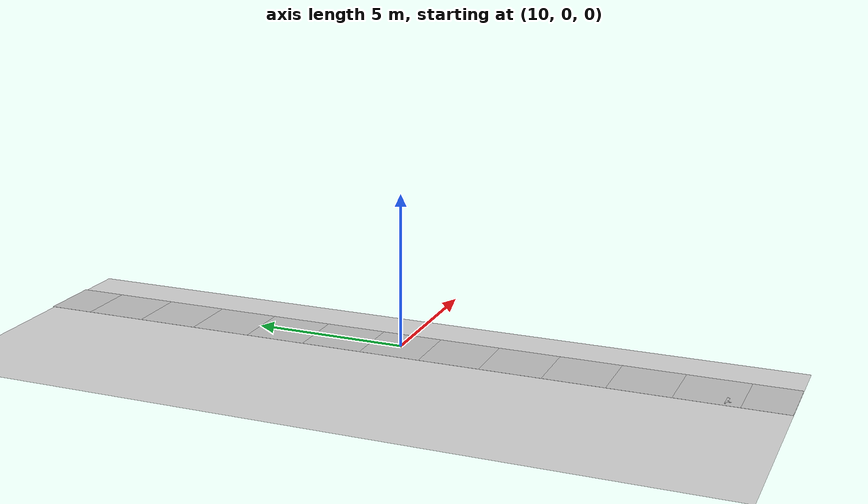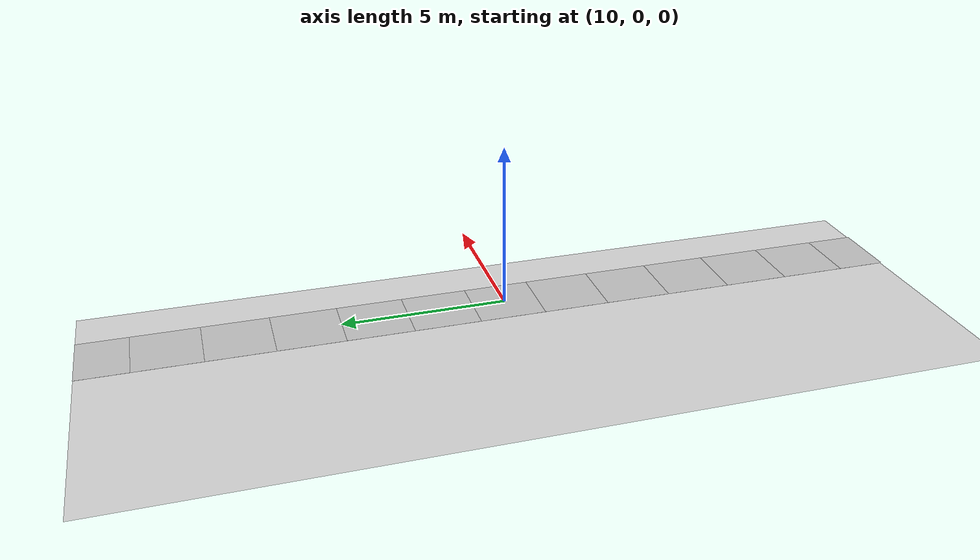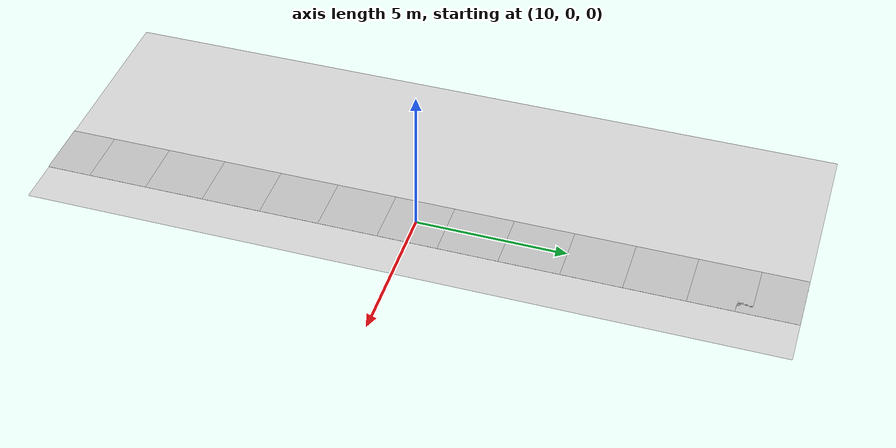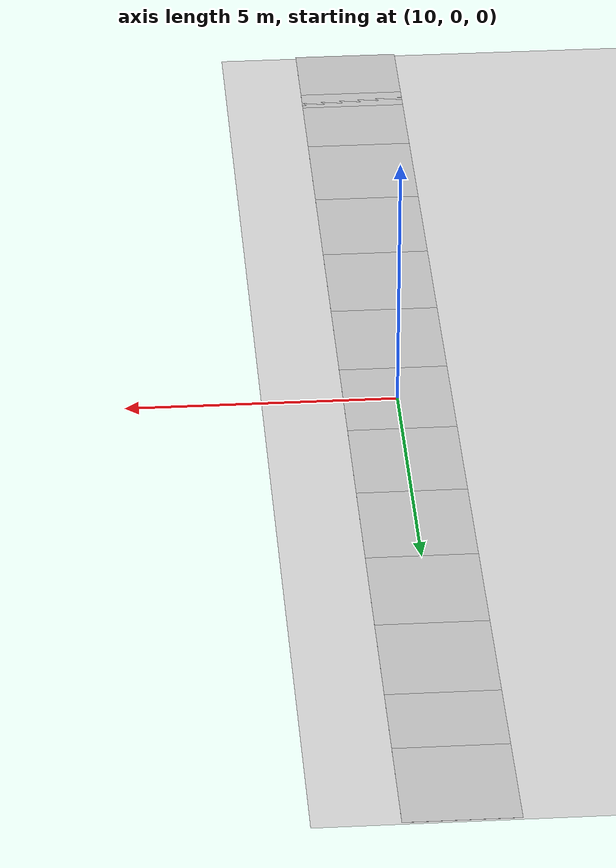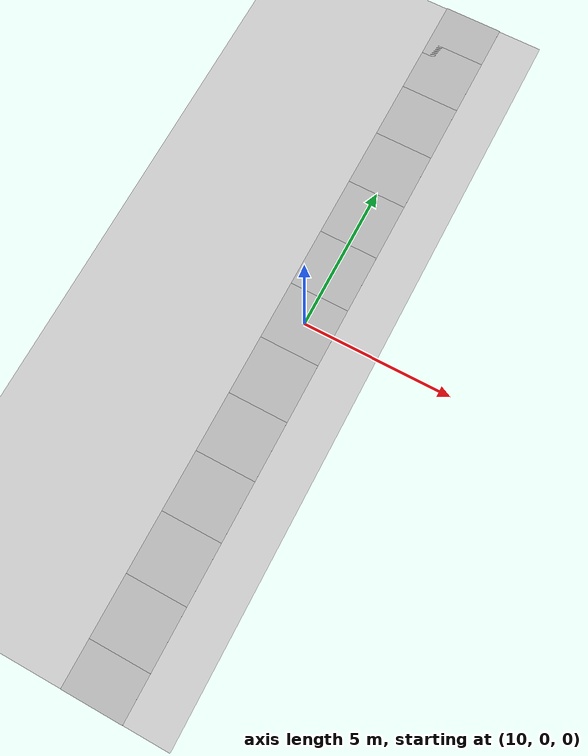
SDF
<sdf version="1.6">
 <world name="default">
  <light name="sun" type="directional">
   <pose>0 0 10 0 -0 0</pose>
   <diffuse>0.8 0.8 0.8 1</diffuse>
   <specular>0.2 0.2 0.2 1</specular>
   <attenuation>
    <range>1000</range>
    <constant>0.9</constant>
    <linear>0.01</linear>
    <quadratic>0.001</quadratic>
   </attenuation>
   <direction>-0.5 0.1 -0.9</direction>
  </light>
  <gravity>0 0 -9.8</gravity>
  <magnetic_field>6e-06 2.3e-05 -4.2e-05</magnetic_field>
  <atmosphere type="adiabatic"/>
  <physics name="default_physics" default="0" type="ode">
   <max_step_size>0.001</max_step_size>
   <real_time_factor>1</real_time_factor>
   <real_time_update_rate>1000</real_time_update_rate>
  </physics>
  <scene><ambient>0.4 0.4 0.4 1</ambient><background>0.7 0.7 0.7 1</background><shadows>1</shadows></scene>
  <spherical_coordinates>
   <surface_model>EARTH_WGS84</surface_model>
   <latitude_deg>0</latitude_deg>
   <longitude_deg>0</longitude_deg>
   <elevation>0</elevation>
   <heading_deg>0</heading_deg>
  </spherical_coordinates>
  <model name="my_ground_plane">
   <static>1</static>
   <link name="link">
    <collision name="collision">
     <geometry><plane><normal>0 0 1</normal><size>25 25</size></plane></geometry>
     <surface><friction><ode><mu>100</mu><mu2>50</mu2></ode></friction></surface>
    </collision>
    <visual name="visual">
     <cast_shadows>0</cast_shadows>
     <geometry><plane><normal>0 0 1</normal><size>25 25</size></plane></geometry>
     <material>
      <script>
       <uri>model://my_ground_plane/materials/scripts/my_ground_plane.material</uri>
       <uri>model://my_ground_plane/materials/textures/MyImage.jpg</uri>
       <name>MyGroundPlane/Image</name>
      </script>
     </material>
    </visual>
   </link>
  </model>
  <model name="my_trail">
   <static>1</static>
   <link name="link">
    <collision name="collision">
     <geometry><plane><normal>0 0 1</normal><size>2 2</size></plane></geometry>
     <surface><friction><ode><mu>100</mu><mu2>50</mu2></ode></friction></surface>
    </collision>
    <visual name="visual">
     <cast_shadows>0</cast_shadows>
     <geometry><plane><normal>0 0 1</normal><size>2 2</size></plane></geometry>
     <material>
      <script>
       <uri>model://my_trail/materials/scripts/my_trail.material</uri>
       <uri>model://my_trail/materials/textures/dirt.jpg</uri>
       <name>MyTrail/Image</name>
      </script>
     </material>
    </visual>
   </link>
   <pose>10 0 0.01 0 -0 0</pose>
  </model>
  <model name="my_trail_0">
   <static>1</static>
   <link name="link">
    <collision name="collision">
     <geometry><plane><normal>0 0 1</normal><size>2 2</size></plane></geometry>
     <surface><friction><ode><mu>100</mu><mu2>50</mu2></ode></friction></surface>
    </collision>
    <visual name="visual">
     <cast_shadows>0</cast_shadows>
     <geometry><plane><normal>0 0 1</normal><size>2 2</size></plane></geometry>
     <material>
      <script>
       <uri>model://my_trail/materials/scripts/my_trail.material</uri>
       <uri>model://my_trail/materials/textures/dirt.jpg</uri>
       <name>MyTrail/Image</name>
      </script>
     </material>
    </visual>
   </link>
   <pose>10 -2 0.01 0 -0 0</pose>
  </model>
  <model name="my_trail_1">
   <static>1</static>
   <link name="link">
    <collision name="collision">
     <geometry><plane><normal>0 0 1</normal><size>2 2</size></plane></geometry>
     <surface><friction><ode><mu>100</mu><mu2>50</mu2></ode></friction></surface>
    </collision>
    <visual name="visual">
     <cast_shadows>0</cast_shadows>
     <geometry><plane><normal>0 0 1</normal><size>2 2</size></plane></geometry>
     <material>
      <script>
       <uri>model://my_trail/materials/scripts/my_trail.material</uri>
       <uri>model://my_trail/materials/textures/dirt.jpg</uri>
       <name>MyTrail/Image</name>
      </script>
     </material>
    </visual>
   </link>
   <pose>10 -4 0.01 0 -0 0</pose>
  </model>
  <model name="my_trail_2">
   <static>1</static>
   <link name="link">
    <collision name="collision">
     <geometry><plane><normal>0 0 1</normal><size>2 2</size></plane></geometry>
     <surface><friction><ode><mu>100</mu><mu2>50</mu2></ode></friction></surface>
    </collision>
    <visual name="visual">
     <cast_shadows>0</cast_shadows>
     <geometry><plane><normal>0 0 1</normal><size>2 2</size></plane></geometry>
     <material>
      <script>
       <uri>model://my_trail/materials/scripts/my_trail.material</uri>
       <uri>model://my_trail/materials/textures/dirt.jpg</uri>
       <name>MyTrail/Image</name>
      </script>
     </material>
    </visual>
   </link>
   <pose>10 -10 0.01 0 -0 0</pose>
  </model>
  <model name="my_trail_3">
   <static>1</static>
   <link name="link">
    <collision name="collision">
     <geometry><plane><normal>0 0 1</normal><size>2 2</size></plane></geometry>
     <surface><friction><ode><mu>100</mu><mu2>50</mu2></ode></friction></surface>
    </collision>
    <visual name="visual">
     <cast_shadows>0</cast_shadows>
     <geometry><plane><normal>0 0 1</normal><size>2 2</size></plane></geometry>
     <material>
      <script>
       <uri>model://my_trail/materials/scripts/my_trail.material</uri>
       <uri>model://my_trail/materials/textures/dirt.jpg</uri>
       <name>MyTrail/Image</name>
      </script>
     </material>
    </visual>
   </link>
   <pose>10 -11.5 0.01 0 -0 0</pose>
  </model>
  <model name="my_trail_4">
   <static>1</static>
   <link name="link">
    <collision name="collision">
     <geometry><plane><normal>0 0 1</normal><size>2 2</size></plane></geometry>
     <surface><friction><ode><mu>100</mu><mu2>50</mu2></ode></friction></surface>
    </collision>
    <visual name="visual">
     <cast_shadows>0</cast_shadows>
     <geometry><plane><normal>0 0 1</normal><size>2 2</size></plane></geometry>
     <material>
      <script>
       <uri>model://my_trail/materials/scripts/my_trail.material</uri>
       <uri>model://my_trail/materials/textures/dirt.jpg</uri>
       <name>MyTrail/Image</name>
      </script>
     </material>
    </visual>
   </link>
   <pose>10 -8 0.01 0 -0 0</pose>
  </model>
  <model name="my_trail_5">
   <static>1</static>
   <link name="link">
    <collision name="collision">
     <geometry><plane><normal>0 0 1</normal><size>2 2</size></plane></geometry>
     <surface><friction><ode><mu>100</mu><mu2>50</mu2></ode></friction></surface>
    </collision>
    <visual name="visual">
     <cast_shadows>0</cast_shadows>
     <geometry><plane><normal>0 0 1</normal><size>2 2</size></plane></geometry>
     <material>
      <script>
       <uri>model://my_trail/materials/scripts/my_trail.material</uri>
       <uri>model://my_trail/materials/textures/dirt.jpg</uri>
       <name>MyTrail/Image</name>
      </script>
     </material>
    </visual>
   </link>
   <pose>10 -6 0.01 0 -0 0</pose>
  </model>
  <model name="my_trail_6">
   <static>1</static>
   <link name="link">
    <collision name="collision">
     <geometry><plane><normal>0 0 1</normal><size>2 2</size></plane></geometry>
     <surface><friction><ode><mu>100</mu><mu2>50</mu2></ode></friction></surface>
    </collision>
    <visual name="visual">
     <cast_shadows>0</cast_shadows>
     <geometry><plane><normal>0 0 1</normal><size>2 2</size></plane></geometry>
     <material>
      <script>
       <uri>model://my_trail/materials/scripts/my_trail.material</uri>
       <uri>model://my_trail/materials/textures/dirt.jpg</uri>
       <name>MyTrail/Image</name>
      </script>
     </material>
    </visual>
   </link>
   <pose>10 2 0.01 0 -0 0</pose>
  </model>
  <model name="my_trail_7">
   <static>1</static>
   <link name="link">
    <collision name="collision">
     <geometry><plane><normal>0 0 1</normal><size>2 2</size></plane></geometry>
     <surface><friction><ode><mu>100</mu><mu2>50</mu2></ode></friction></surface>
    </collision>
    <visual name="visual">
     <cast_shadows>0</cast_shadows>
     <geometry><plane><normal>0 0 1</normal><size>2 2</size></plane></geometry>
     <material>
      <script>
       <uri>model://my_trail/materials/scripts/my_trail.material</uri>
       <uri>model://my_trail/materials/textures/dirt.jpg</uri>
       <name>MyTrail/Image</name>
      </script>
     </material>
    </visual>
   </link>
   <pose>10 4 0.01 0 -0 0</pose>
  </model>
  <model name="my_trail_8">
   <static>1</static>
   <link name="link">
    <collision name="collision">
     <geometry><plane><normal>0 0 1</normal><size>2 2</size></plane></geometry>
     <surface><friction><ode><mu>100</mu><mu2>50</mu2></ode></friction></surface>
    </collision>
    <visual name="visual">
     <cast_shadows>0</cast_shadows>
     <geometry><plane><normal>0 0 1</normal><size>2 2</size></plane></geometry>
     <material>
      <script>
       <uri>model://my_trail/materials/scripts/my_trail.material</uri>
       <uri>model://my_trail/materials/textures/dirt.jpg</uri>
       <name>MyTrail/Image</name>
      </script>
     </material>
    </visual>
   </link>
   <pose>10 8 0.01 0 -0 0</pose>
  </model>
  <model name="my_trail_9">
   <static>1</static>
   <link name="link">
    <collision name="collision">
     <geometry><plane><normal>0 0 1</normal><size>2 2</size></plane></geometry>
     <surface><friction><ode><mu>100</mu><mu2>50</mu2></ode></friction></surface>
    </collision>
    <visual name="visual">
     <cast_shadows>0</cast_shadows>
     <geometry><plane><normal>0 0 1</normal><size>2 2</size></plane></geometry>
     <material>
      <script>
       <uri>model://my_trail/materials/scripts/my_trail.material</uri>
       <uri>model://my_trail/materials/textures/dirt.jpg</uri>
       <name>MyTrail/Image</name>
      </script>
     </material>
    </visual>
   </link>
   <pose>10 10 0.01 0 -0 0</pose>
  </model>
  <model name="my_trail_10">
   <static>1</static>
   <link name="link">
    <collision name="collision">
     <geometry><plane><normal>0 0 1</normal><size>2 2</size></plane></geometry>
     <surface><friction><ode><mu>100</mu><mu2>50</mu2></ode></friction></surface>
    </collision>
    <visual name="visual">
     <cast_shadows>0</cast_shadows>
     <geometry><plane><normal>0 0 1</normal><size>2 2</size></plane></geometry>
     <material>
      <script>
       <uri>model://my_trail/materials/scripts/my_trail.material</uri>
       <uri>model://my_trail/materials/textures/dirt.jpg</uri>
       <name>MyTrail/Image</name>
      </script>
     </material>
    </visual>
   </link>
   <pose>10 6 0.01 0 -0 0</pose>
  </model>
  <model name="my_trail_11">
   <static>1</static>
   <link name="link">
    <collision name="collision">
     <geometry><plane><normal>0 0 1</normal><size>2 2</size></plane></geometry>
     <surface><friction><ode><mu>100</mu><mu2>50</mu2></ode></friction></surface>
    </collision>
    <visual name="visual">
     <cast_shadows>0</cast_shadows>
     <geometry><plane><normal>0 0 1</normal><size>2 2</size></plane></geometry>
     <material>
      <script>
       <uri>model://my_trail/materials/scripts/my_trail.material</uri>
       <uri>model://my_trail/materials/textures/dirt.jpg</uri>
       <name>MyTrail/Image</name>
      </script>
     </material>
    </visual>
   </link>
   <pose>10 11.5 0.01 0 -0 0</pose>
  </model>
 </world>
</sdf>
